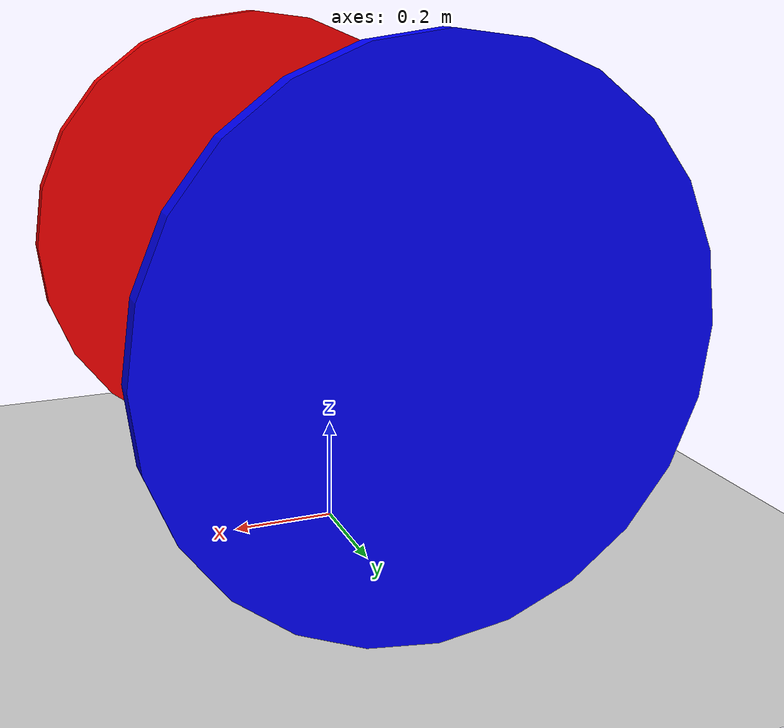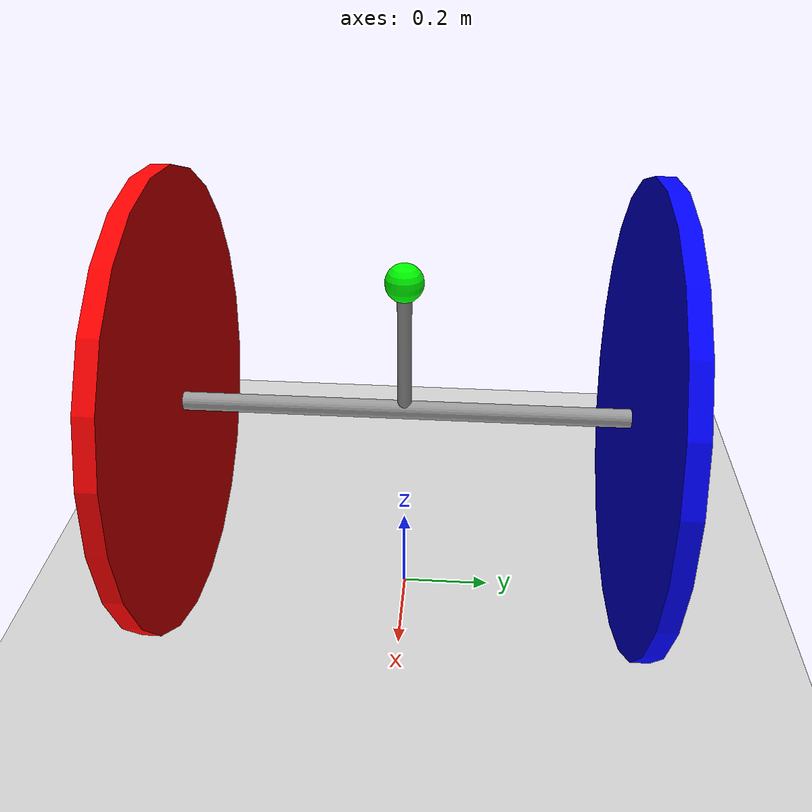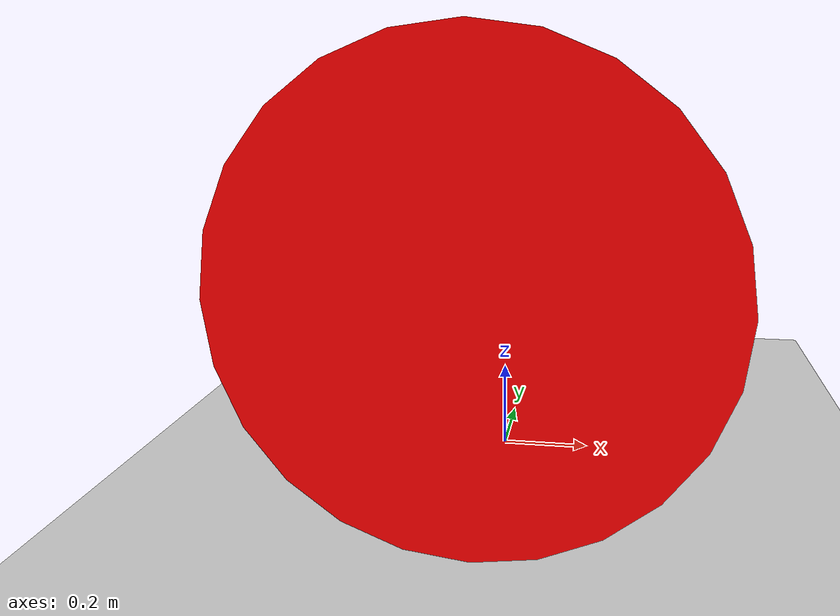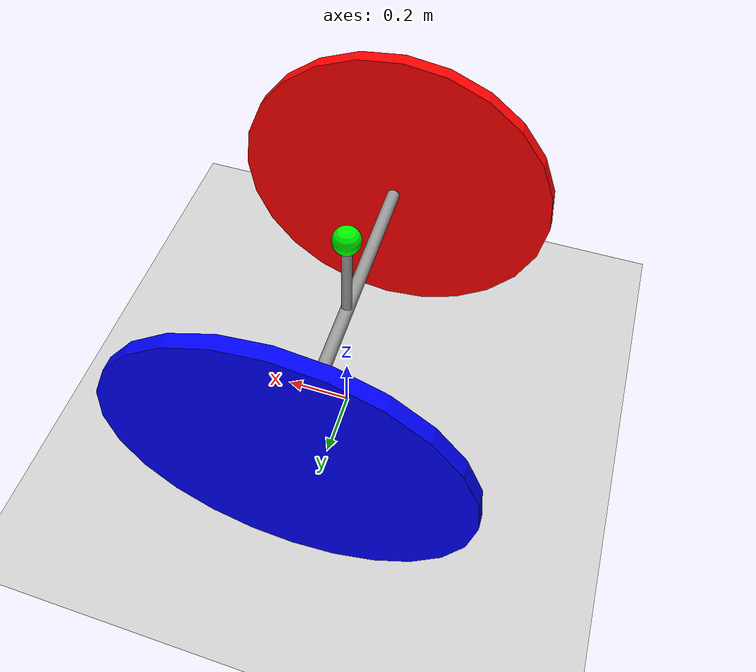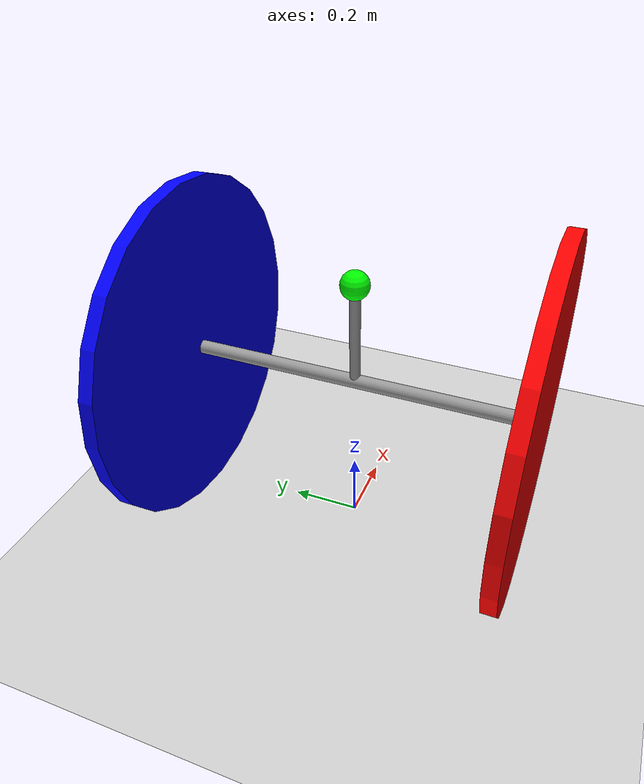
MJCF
<mujoco model="hoverboard">
    <asset>
        <texture type="skybox" builtin="gradient" rgb1="0.3 0.5 0.7" rgb2="0 0 0" width="512" height="3072"/>
    </asset>

    <option gravity="0 0 -9.81" timestep="0.002" integrator="RK4"/>

    <default>
        <joint damping="0.01"/>
        <geom friction="1.0 0.005 0.0001"/>
    </default>

    <worldbody>
        <geom name="floor" type="plane" size="0 0 0.1" rgba="0.8 0.8 0.8 1"/>

        <body name="chassis" pos="0 0 0.5">
            <joint name="chassis_x" type="slide" axis="1 0 0"/>
            <joint name="chassis_y" type="slide" axis="0 1 0"/>
            <joint name="chassis_z" type="slide" axis="0 0 1"/>
            <joint name="chassis_hinge_z" type="hinge" axis="0 0 1" damping="0.001"/>
            <joint name="chassis_hinge_x" type="hinge" axis="1 0 0" damping="0.001"/>
            <inertial pos="0 0 0" mass="1e-6" diaginertia="1e-8 1e-8 1e-8"/>
            <geom name="chassis_geom" type="cylinder" size="0.02 0.5" quat="0.707 0.707 0 0" rgba="0.6 0.6 0.6 1"/>

            <body name="left_wheel" pos="0 0.5 0">
                <joint name="left_hinge" type="hinge" axis="0 1 0" damping="0.001"/>
                <inertial pos="0 0 0" mass="10.0" diaginertia="0.625 1.25 0.625"/>
                <geom name="left_wheel_geom" type="cylinder" size="0.5 0.02" quat="0.707 0.707 0 0" rgba="0 0 1 1"/>
            </body>

            <body name="right_wheel" pos="0 -0.5 0">
                <joint name="right_hinge" type="hinge" axis="0 1 0" damping="0.001"/>
                <inertial pos="0 0 0" mass="10.0" diaginertia="0.625 1.25 0.625"/>
                <geom name="right_wheel_geom" type="cylinder" size="0.5 0.02" quat="0.707 0.707 0 0" rgba="1 0 0 1"/>
            </body>

            <body name="pendulum_gimble" pos="0 0 0">
                <joint name = "pend_hinge_x" type="hinge" axis="1 0 0" damping="0.0005"/>
                <inertial pos="0 0 0" mass="1e-6" diaginertia="1e-8 1e-8 1e-8"/>

                <body name="pendulum_rod" pos="0 0 0">
                    <joint name="pend_hinge_y" type="hinge" axis="0 1 0" damping="0.0005"/>
                    <inertial pos="0 0 0.15" mass="1e-6" diaginertia="1e-8 1e-8 1e-8"/>
                    <geom name="rod_geom" type="capsule" fromto="0 0 0 0 0 0.3" size="0.015" rgba="0.6 0.6 0.6 1"/>

                    <body name="pendulum_mass" pos="0 0 0.3">
                        <inertial pos="0 0 0" mass="50.0" diaginertia="0.001 0.001 0.001"/>
                        <geom name="mass_geom" type="sphere" size="0.04" rgba="0 1 0 1"/>
                    </body>
                </body>
            </body>
        </body>
    </worldbody>

    <actuator>
        <motor name="left_motor" joint="left_hinge" gear="1" ctrlrange="-30.0 30.0"/>
        <motor name="right_motor" joint="right_hinge" gear="1" ctrlrange="-30.0 30.0"/>
    </actuator>

    </mujoco>
